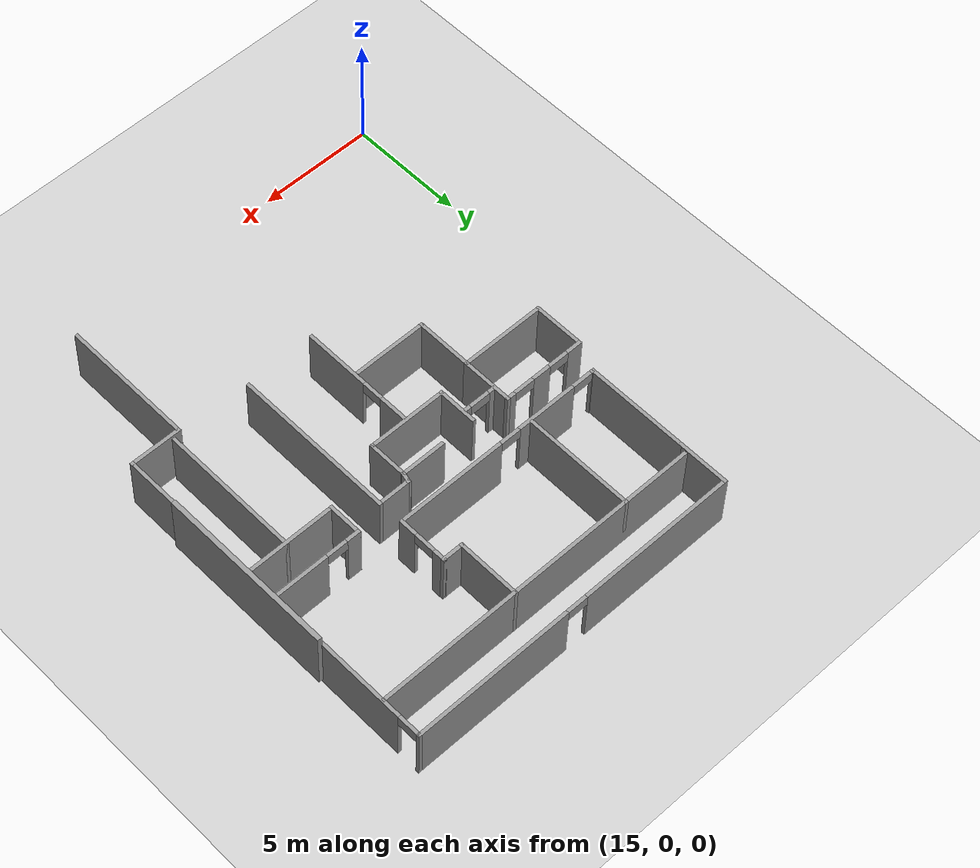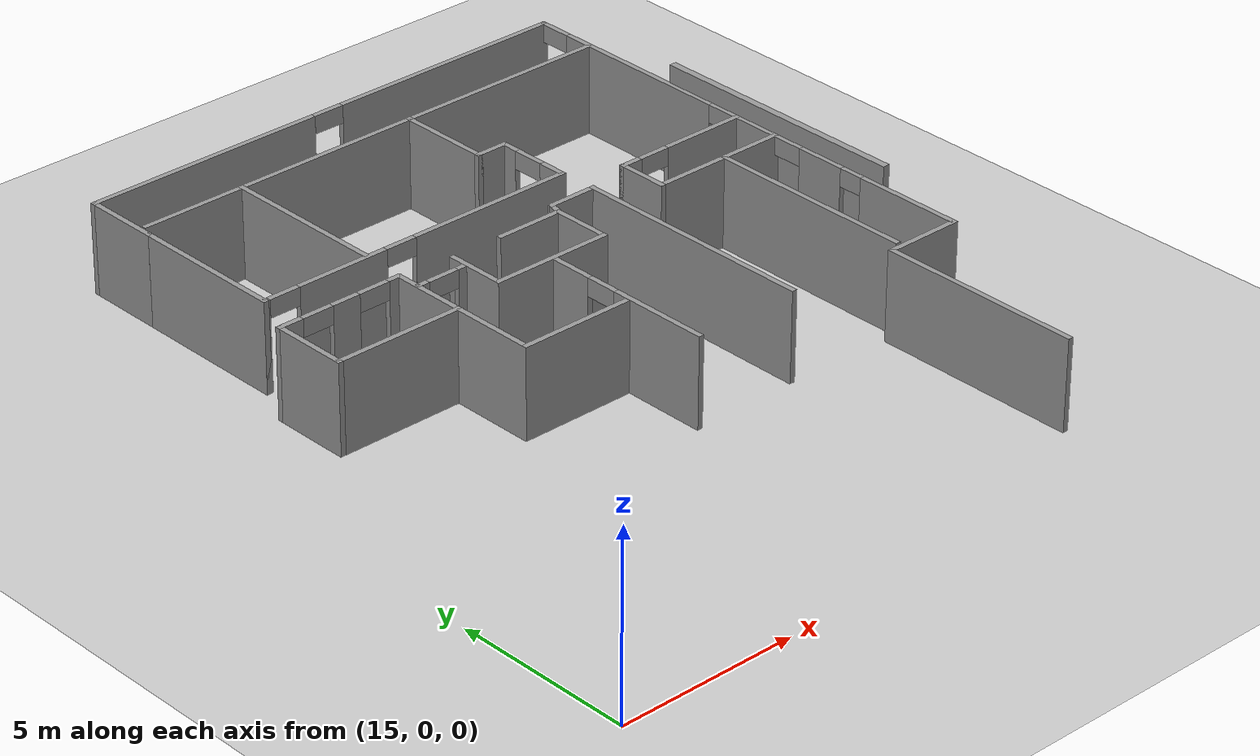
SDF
<sdf version="1.6">
 <world name="default">
  <model name="ground_plane">
   <static>1</static>
   <link name="link">
    <collision name="collision">
     <geometry><plane><normal>0 0 1</normal><size>100 100</size></plane></geometry>
     <surface><friction><ode><mu>100</mu><mu2>50</mu2></ode></friction></surface>
    </collision>
    <visual name="visual">
     <cast_shadows>0</cast_shadows>
     <geometry><plane><normal>0 0 1</normal><size>100 100</size></plane></geometry>
     <material>
      <script><uri>file://media/materials/scripts/gazebo.material</uri><name>Gazebo/Grey</name></script>
     </material>
    </visual>
   </link>
  </model>
  <model name="fin_se1f1.sdf">
   <pose>1.83798 -2.38449 0.2 0 -0 0</pose>
   <link name="Wall_12">
    <collision name="Wall_12_Collision">
     <geometry><box><size>5.75 0.15 2.5</size></box></geometry>
     <pose>0 0 1.25 0 -0 0</pose>
    </collision>
    <visual name="Wall_12_Visual">
     <pose>0 0 1.25 0 -0 0</pose>
     <geometry><box><size>5.75 0.15 2.5</size></box></geometry>
     <material>
      <script><uri>file://media/materials/scripts/gazebo.material</uri><name>Gazebo/Grey</name></script>
      <ambient>1 1 1 1</ambient>
     </material>
     <meta><layer>0</layer></meta>
    </visual>
    <pose>28.6504 6.82457 0 0 -0 1.5708</pose>
   </link>
   <link name="Wall_13">
    <collision name="Wall_13_Collision">
     <geometry><box><size>2.25 0.15 2.5</size></box></geometry>
     <pose>0 0 1.25 0 -0 0</pose>
    </collision>
    <visual name="Wall_13_Visual">
     <pose>0 0 1.25 0 -0 0</pose>
     <geometry><box><size>2.25 0.15 2.5</size></box></geometry>
     <material>
      <script><uri>file://media/materials/scripts/gazebo.material</uri><name>Gazebo/Grey</name></script>
      <ambient>1 1 1 1</ambient>
     </material>
     <meta><layer>0</layer></meta>
    </visual>
    <pose>29.7004 9.62457 0 0 -0 0</pose>
   </link>
   <link name="Wall_16">
    <pose>30.7504 16.9246 0 0 -0 1.5708</pose>
    <visual name="Wall_16_Visual_0">
     <pose>-5.81054 0 1.25 0 -0 0</pose>
     <geometry><box><size>3.12893 0.15 2.5</size></box></geometry>
     <material>
      <script><uri>file://media/materials/scripts/gazebo.material</uri><name>Gazebo/Grey</name></script>
      <ambient>1 1 1 1</ambient>
     </material>
     <meta><layer>0</layer></meta>
    </visual>
    <collision name="Wall_16_Collision_0">
     <geometry><box><size>3.12893 0.15 2.5</size></box></geometry>
     <pose>-5.81054 0 1.25 0 -0 0</pose>
    </collision>
    <visual name="Wall_16_Visual_1">
     <pose>-2.86079 0 1.25 0 -0 0</pose>
     <geometry><box><size>1.41306 0.15 2.5</size></box></geometry>
     <material>
      <script><uri>file://media/materials/scripts/gazebo.material</uri><name>Gazebo/Grey</name></script>
      <ambient>1 1 1 1</ambient>
     </material>
     <meta><layer>0</layer></meta>
    </visual>
    <collision name="Wall_16_Collision_1">
     <geometry><box><size>1.41306 0.15 2.5</size></box></geometry>
     <pose>-2.86079 0 1.25 0 -0 0</pose>
    </collision>
    <visual name="Wall_16_Visual_2">
     <pose>-0.547733 0 1.25 0 -0 0</pose>
     <geometry><box><size>1.41306 0.15 2.5</size></box></geometry>
     <material>
      <script><uri>file://media/materials/scripts/gazebo.material</uri><name>Gazebo/Grey</name></script>
      <ambient>1 1 1 1</ambient>
     </material>
     <meta><layer>0</layer></meta>
    </visual>
    <collision name="Wall_16_Collision_2">
     <geometry><box><size>1.41306 0.15 2.5</size></box></geometry>
     <pose>-0.547733 0 1.25 0 -0 0</pose>
    </collision>
    <visual name="Wall_16_Visual_3">
     <pose>3.70629 0 1.25 0 -0 0</pose>
     <geometry><box><size>5.29498 0.15 2.5</size></box></geometry>
     <material>
      <script><uri>file://media/materials/scripts/gazebo.material</uri><name>Gazebo/Grey</name></script>
      <ambient>1 1 1 1</ambient>
     </material>
     <meta><layer>0</layer></meta>
    </visual>
    <collision name="Wall_16_Collision_3">
     <geometry><box><size>5.29498 0.15 2.5</size></box></geometry>
     <pose>3.70629 0 1.25 0 -0 0</pose>
    </collision>
    <visual name="Wall_16_Visual_4">
     <pose>7.31439 0 1.25 0 -0 0</pose>
     <geometry><box><size>0.121222 0.15 2.5</size></box></geometry>
     <material>
      <script><uri>file://media/materials/scripts/gazebo.material</uri><name>Gazebo/Grey</name></script>
      <ambient>1 1 1 1</ambient>
     </material>
     <meta><layer>0</layer></meta>
    </visual>
    <collision name="Wall_16_Collision_4">
     <geometry><box><size>0.121222 0.15 2.5</size></box></geometry>
     <pose>7.31439 0 1.25 0 -0 0</pose>
    </collision>
    <visual name="Wall_16_Visual_5">
     <pose>-3.9067 0 2.25 0 -0 0</pose>
     <geometry><box><size>0.678751 0.15 0.5</size></box></geometry>
     <material>
      <script><uri>file://media/materials/scripts/gazebo.material</uri><name>Gazebo/Grey</name></script>
      <ambient>1 1 1 1</ambient>
     </material>
     <meta><layer>0</layer></meta>
    </visual>
    <collision name="Wall_16_Collision_5">
     <geometry><box><size>0.678751 0.15 0.5</size></box></geometry>
     <pose>-3.9067 0 2.25 0 -0 0</pose>
    </collision>
    <visual name="Wall_16_Visual_6">
     <pose>-1.70426 0 2.25 0 -0 0</pose>
     <geometry><box><size>0.9 0.15 0.5</size></box></geometry>
     <material>
      <script><uri>file://media/materials/scripts/gazebo.material</uri><name>Gazebo/Grey</name></script>
      <ambient>1 1 1 1</ambient>
     </material>
     <meta><layer>0</layer></meta>
    </visual>
    <collision name="Wall_16_Collision_6">
     <geometry><box><size>0.9 0.15 0.5</size></box></geometry>
     <pose>-1.70426 0 2.25 0 -0 0</pose>
    </collision>
    <visual name="Wall_16_Visual_7">
     <pose>0.608797 0 2.25 0 -0 0</pose>
     <geometry><box><size>0.9 0.15 0.5</size></box></geometry>
     <material>
      <script><uri>file://media/materials/scripts/gazebo.material</uri><name>Gazebo/Grey</name></script>
      <ambient>1 1 1 1</ambient>
     </material>
     <meta><layer>0</layer></meta>
    </visual>
    <collision name="Wall_16_Collision_7">
     <geometry><box><size>0.9 0.15 0.5</size></box></geometry>
     <pose>0.608797 0 2.25 0 -0 0</pose>
    </collision>
    <visual name="Wall_16_Visual_8">
     <pose>6.80378 0 2.25 0 -0 0</pose>
     <geometry><box><size>0.9 0.15 0.5</size></box></geometry>
     <material>
      <script><uri>file://media/materials/scripts/gazebo.material</uri><name>Gazebo/Grey</name></script>
      <ambient>1 1 1 1</ambient>
     </material>
     <meta><layer>0</layer></meta>
    </visual>
    <collision name="Wall_16_Collision_8">
     <geometry><box><size>0.9 0.15 0.5</size></box></geometry>
     <pose>6.80378 0 2.25 0 -0 0</pose>
    </collision>
   </link>
   <link name="Wall_17">
    <pose>23.4504 24.2246 0 0 -0 3.14159</pose>
    <visual name="Wall_17_Visual_0">
     <pose>-3.90372 0 1.25 0 -0 0</pose>
     <geometry><box><size>6.94256 0.15 2.5</size></box></geometry>
     <material>
      <script><uri>file://media/materials/scripts/gazebo.material</uri><name>Gazebo/Grey</name></script>
      <ambient>1 1 1 1</ambient>
     </material>
     <meta><layer>0</layer></meta>
    </visual>
    <collision name="Wall_17_Collision_0">
     <geometry><box><size>6.94256 0.15 2.5</size></box></geometry>
     <pose>-3.90372 0 1.25 0 -0 0</pose>
    </collision>
    <visual name="Wall_17_Visual_1">
     <pose>3.92128 0 1.25 0 -0 0</pose>
     <geometry><box><size>6.90744 0.15 2.5</size></box></geometry>
     <material>
      <script><uri>file://media/materials/scripts/gazebo.material</uri><name>Gazebo/Grey</name></script>
      <ambient>1 1 1 1</ambient>
     </material>
     <meta><layer>0</layer></meta>
    </visual>
    <collision name="Wall_17_Collision_1">
     <geometry><box><size>6.90744 0.15 2.5</size></box></geometry>
     <pose>3.92128 0 1.25 0 -0 0</pose>
    </collision>
    <visual name="Wall_17_Visual_2">
     <pose>0.017557 0 2.25 0 -0 0</pose>
     <geometry><box><size>0.9 0.15 0.5</size></box></geometry>
     <material>
      <script><uri>file://media/materials/scripts/gazebo.material</uri><name>Gazebo/Grey</name></script>
      <ambient>1 1 1 1</ambient>
     </material>
     <meta><layer>0</layer></meta>
    </visual>
    <collision name="Wall_17_Collision_2">
     <geometry><box><size>0.9 0.15 0.5</size></box></geometry>
     <pose>0.017557 0 2.25 0 -0 0</pose>
    </collision>
   </link>
   <link name="Wall_18">
    <collision name="Wall_18_Collision">
     <geometry><box><size>2.25 0.15 2.5</size></box></geometry>
     <pose>0 0 1.25 0 -0 0</pose>
    </collision>
    <visual name="Wall_18_Visual">
     <pose>0 0 1.25 0 -0 0</pose>
     <geometry><box><size>2.25 0.15 2.5</size></box></geometry>
     <material>
      <script><uri>file://media/materials/scripts/gazebo.material</uri><name>Gazebo/Grey</name></script>
      <ambient>1 1 1 1</ambient>
     </material>
     <meta><layer>0</layer></meta>
    </visual>
    <pose>16.1504 23.1746 0 0 0 -1.5708</pose>
   </link>
   <link name="Wall_233">
    <pose>19.9645 15.9042 0 0 -0 0</pose>
    <visual name="Wall_233_Visual_0">
     <pose>-0.585512 0 1.25 0 -0 0</pose>
     <geometry><box><size>0.328976 0.15 2.5</size></box></geometry>
     <material>
      <script><uri>file://media/materials/scripts/gazebo.material</uri><name>Gazebo/Grey</name></script>
      <ambient>1 1 1 1</ambient>
     </material>
     <meta><layer>0</layer></meta>
    </visual>
    <collision name="Wall_233_Collision_0">
     <geometry><box><size>0.328976 0.15 2.5</size></box></geometry>
     <pose>-0.585512 0 1.25 0 -0 0</pose>
    </collision>
    <visual name="Wall_233_Visual_1">
     <pose>0.614488 0 1.25 0 -0 0</pose>
     <geometry><box><size>0.271024 0.15 2.5</size></box></geometry>
     <material>
      <script><uri>file://media/materials/scripts/gazebo.material</uri><name>Gazebo/Grey</name></script>
      <ambient>1 1 1 1</ambient>
     </material>
     <meta><layer>0</layer></meta>
    </visual>
    <collision name="Wall_233_Collision_1">
     <geometry><box><size>0.271024 0.15 2.5</size></box></geometry>
     <pose>0.614488 0 1.25 0 -0 0</pose>
    </collision>
    <visual name="Wall_233_Visual_2">
     <pose>0.028976 0 2.25 0 -0 0</pose>
     <geometry><box><size>0.9 0.15 0.5</size></box></geometry>
     <material>
      <script><uri>file://media/materials/scripts/gazebo.material</uri><name>Gazebo/Grey</name></script>
      <ambient>1 1 1 1</ambient>
     </material>
     <meta><layer>0</layer></meta>
    </visual>
    <collision name="Wall_233_Collision_2">
     <geometry><box><size>0.9 0.15 0.5</size></box></geometry>
     <pose>0.028976 0 2.25 0 -0 0</pose>
    </collision>
   </link>
   <link name="Wall_32">
    <collision name="Wall_32_Collision">
     <geometry><box><size>4 0.15 2.5</size></box></geometry>
     <pose>0 0 1.25 0 -0 0</pose>
    </collision>
    <visual name="Wall_32_Visual">
     <pose>0 0 1.25 0 -0 0</pose>
     <geometry><box><size>4 0.15 2.5</size></box></geometry>
     <material>
      <script><uri>file://media/materials/scripts/gazebo.material</uri><name>Gazebo/Grey</name></script>
      <ambient>1 1 1 1</ambient>
     </material>
     <meta><layer>0</layer></meta>
    </visual>
    <pose>28.8116 15.7048 0 0 -0 3.14159</pose>
   </link>
   <link name="Wall_33">
    <collision name="Wall_33_Collision">
     <geometry><box><size>1.5 0.15 2.5</size></box></geometry>
     <pose>0 0 1.25 0 -0 0</pose>
    </collision>
    <visual name="Wall_33_Visual">
     <pose>0 0 1.25 0 -0 0</pose>
     <geometry><box><size>1.5 0.15 2.5</size></box></geometry>
     <material>
      <script><uri>file://media/materials/scripts/gazebo.material</uri><name>Gazebo/Grey</name></script>
      <ambient>1 1 1 1</ambient>
     </material>
     <meta><layer>0</layer></meta>
    </visual>
    <pose>26.8866 16.3798 0 0 -0 1.5708</pose>
   </link>
   <link name="Wall_34">
    <pose>28.8116 17.0548 0 0 -0 0</pose>
    <visual name="Wall_34_Visual_0">
     <pose>-1.6918 0 1.25 0 -0 0</pose>
     <geometry><box><size>0.616404 0.15 2.5</size></box></geometry>
     <material>
      <script><uri>file://media/materials/scripts/gazebo.material</uri><name>Gazebo/Grey</name></script>
      <ambient>1 1 1 1</ambient>
     </material>
     <meta><layer>0</layer></meta>
    </visual>
    <collision name="Wall_34_Collision_0">
     <geometry><box><size>0.616404 0.15 2.5</size></box></geometry>
     <pose>-1.6918 0 1.25 0 -0 0</pose>
    </collision>
    <visual name="Wall_34_Visual_1">
     <pose>0.758202 0 1.25 0 -0 0</pose>
     <geometry><box><size>2.4836 0.15 2.5</size></box></geometry>
     <material>
      <script><uri>file://media/materials/scripts/gazebo.material</uri><name>Gazebo/Grey</name></script>
      <ambient>1 1 1 1</ambient>
     </material>
     <meta><layer>0</layer></meta>
    </visual>
    <collision name="Wall_34_Collision_1">
     <geometry><box><size>2.4836 0.15 2.5</size></box></geometry>
     <pose>0.758202 0 1.25 0 -0 0</pose>
    </collision>
    <visual name="Wall_34_Visual_2">
     <pose>-0.933596 0 2.25 0 -0 0</pose>
     <geometry><box><size>0.9 0.15 0.5</size></box></geometry>
     <material>
      <script><uri>file://media/materials/scripts/gazebo.material</uri><name>Gazebo/Grey</name></script>
      <ambient>1 1 1 1</ambient>
     </material>
     <meta><layer>0</layer></meta>
    </visual>
    <collision name="Wall_34_Collision_2">
     <geometry><box><size>0.9 0.15 0.5</size></box></geometry>
     <pose>-0.933596 0 2.25 0 -0 0</pose>
    </collision>
   </link>
   <link name="Wall_36">
    <collision name="Wall_36_Collision">
     <geometry><box><size>6 0.15 2.5</size></box></geometry>
     <pose>0 0 1.25 0 -0 0</pose>
    </collision>
    <visual name="Wall_36_Visual">
     <pose>0 0 1.25 0 -0 0</pose>
     <geometry><box><size>6 0.15 2.5</size></box></geometry>
     <material>
      <script><uri>file://media/materials/scripts/gazebo.material</uri><name>Gazebo/Grey</name></script>
      <ambient>1 1 1 1</ambient>
     </material>
     <meta><layer>0</layer></meta>
    </visual>
    <pose>29.0138 12.7798 0 0 0 -1.5708</pose>
   </link>
   <link name="Wall_38">
    <pose>17.4309 16.5662 0 0 -0 3.14159</pose>
    <visual name="Wall_38_Visual_0">
     <pose>-1.65937 0 1.25 0 -0 0</pose>
     <geometry><box><size>0.431262 0.15 2.5</size></box></geometry>
     <material>
      <script><uri>file://media/materials/scripts/gazebo.material</uri><name>Gazebo/Grey</name></script>
      <ambient>1 1 1 1</ambient>
     </material>
     <meta><layer>0</layer></meta>
    </visual>
    <collision name="Wall_38_Collision_0">
     <geometry><box><size>0.431262 0.15 2.5</size></box></geometry>
     <pose>-1.65937 0 1.25 0 -0 0</pose>
    </collision>
    <visual name="Wall_38_Visual_1">
     <pose>-0.138911 0 1.25 0 -0 0</pose>
     <geometry><box><size>0.809654 0.15 2.5</size></box></geometry>
     <material>
      <script><uri>file://media/materials/scripts/gazebo.material</uri><name>Gazebo/Grey</name></script>
      <ambient>1 1 1 1</ambient>
     </material>
     <meta><layer>0</layer></meta>
    </visual>
    <collision name="Wall_38_Collision_1">
     <geometry><box><size>0.809654 0.15 2.5</size></box></geometry>
     <pose>-0.138911 0 1.25 0 -0 0</pose>
    </collision>
    <visual name="Wall_38_Visual_2">
     <pose>1.52046 0 1.25 0 -0 0</pose>
     <geometry><box><size>0.709084 0.15 2.5</size></box></geometry>
     <material>
      <script><uri>file://media/materials/scripts/gazebo.material</uri><name>Gazebo/Grey</name></script>
      <ambient>1 1 1 1</ambient>
     </material>
     <meta><layer>0</layer></meta>
    </visual>
    <collision name="Wall_38_Collision_2">
     <geometry><box><size>0.709084 0.15 2.5</size></box></geometry>
     <pose>1.52046 0 1.25 0 -0 0</pose>
    </collision>
    <visual name="Wall_38_Visual_3">
     <pose>-0.993738 0 2.25 0 -0 0</pose>
     <geometry><box><size>0.9 0.15 0.5</size></box></geometry>
     <material>
      <script><uri>file://media/materials/scripts/gazebo.material</uri><name>Gazebo/Grey</name></script>
      <ambient>1 1 1 1</ambient>
     </material>
     <meta><layer>0</layer></meta>
    </visual>
    <collision name="Wall_38_Collision_3">
     <geometry><box><size>0.9 0.15 0.5</size></box></geometry>
     <pose>-0.993738 0 2.25 0 -0 0</pose>
    </collision>
    <visual name="Wall_38_Visual_4">
     <pose>0.715916 0 2.25 0 -0 0</pose>
     <geometry><box><size>0.9 0.15 0.5</size></box></geometry>
     <material>
      <script><uri>file://media/materials/scripts/gazebo.material</uri><name>Gazebo/Grey</name></script>
      <ambient>1 1 1 1</ambient>
     </material>
     <meta><layer>0</layer></meta>
    </visual>
    <collision name="Wall_38_Collision_4">
     <geometry><box><size>0.9 0.15 0.5</size></box></geometry>
     <pose>0.715916 0 2.25 0 -0 0</pose>
    </collision>
   </link>
   <link name="Wall_39">
    <collision name="Wall_39_Collision">
     <geometry><box><size>2.25 0.15 2.5</size></box></geometry>
     <pose>0 0 1.25 0 -0 0</pose>
    </collision>
    <visual name="Wall_39_Visual">
     <pose>0 0 1.25 0 -0 0</pose>
     <geometry><box><size>2.25 0.15 2.5</size></box></geometry>
     <material>
      <script><uri>file://media/materials/scripts/gazebo.material</uri><name>Gazebo/Grey</name></script>
      <ambient>1 1 1 1</ambient>
     </material>
     <meta><layer>0</layer></meta>
    </visual>
    <pose>15.6309 15.5162 0 0 0 -1.5708</pose>
   </link>
   <link name="Wall_40">
    <collision name="Wall_40_Collision">
     <geometry><box><size>3.75 0.15 2.5</size></box></geometry>
     <pose>0 0 1.25 0 -0 0</pose>
    </collision>
    <visual name="Wall_40_Visual">
     <pose>0 0 1.25 0 -0 0</pose>
     <geometry><box><size>3.75 0.15 2.5</size></box></geometry>
     <material>
      <script><uri>file://media/materials/scripts/gazebo.material</uri><name>Gazebo/Grey</name></script>
      <ambient>1 1 1 1</ambient>
     </material>
     <meta><layer>0</layer></meta>
    </visual>
    <pose>17.4309 14.4662 0 0 -0 0</pose>
   </link>
   <link name="Wall_41">
    <collision name="Wall_41_Collision">
     <geometry><box><size>2.25 0.15 2.5</size></box></geometry>
     <pose>0 0 1.25 0 -0 0</pose>
    </collision>
    <visual name="Wall_41_Visual">
     <pose>0 0 1.25 0 -0 0</pose>
     <geometry><box><size>2.25 0.15 2.5</size></box></geometry>
     <material>
      <script><uri>file://media/materials/scripts/gazebo.material</uri><name>Gazebo/Grey</name></script>
      <ambient>1 1 1 1</ambient>
     </material>
     <meta><layer>0</layer></meta>
    </visual>
    <pose>19.2309 15.5162 0 0 -0 1.5708</pose>
   </link>
   <link name="Wall_43">
    <collision name="Wall_43_Collision">
     <geometry><box><size>1.75 0.15 2.5</size></box></geometry>
     <pose>0 0 1.25 0 -0 0</pose>
    </collision>
    <visual name="Wall_43_Visual">
     <pose>0 0 1.25 0 -0 0</pose>
     <geometry><box><size>1.75 0.15 2.5</size></box></geometry>
     <material>
      <script><uri>file://media/materials/scripts/gazebo.material</uri><name>Gazebo/Grey</name></script>
      <ambient>1 1 1 1</ambient>
     </material>
     <meta><layer>0</layer></meta>
    </visual>
    <pose>20.7691 15.5816 0 0 0 -1.5708</pose>
   </link>
   <link name="Wall_44">
    <collision name="Wall_44_Collision">
     <geometry><box><size>3.5 0.15 2.5</size></box></geometry>
     <pose>0 0 1.25 0 -0 0</pose>
    </collision>
    <visual name="Wall_44_Visual">
     <pose>0 0 1.25 0 -0 0</pose>
     <geometry><box><size>3.5 0.15 2.5</size></box></geometry>
     <material>
      <script><uri>file://media/materials/scripts/gazebo.material</uri><name>Gazebo/Grey</name></script>
      <ambient>1 1 1 1</ambient>
     </material>
     <meta><layer>0</layer></meta>
    </visual>
    <pose>22.4441 14.7816 0 0 -0 0</pose>
   </link>
   <link name="Wall_45">
    <collision name="Wall_45_Collision">
     <geometry><box><size>1.75 0.15 2.5</size></box></geometry>
     <pose>0 0 1.25 0 -0 0</pose>
    </collision>
    <visual name="Wall_45_Visual">
     <pose>0 0 1.25 0 -0 0</pose>
     <geometry><box><size>1.75 0.15 2.5</size></box></geometry>
     <material>
      <script><uri>file://media/materials/scripts/gazebo.material</uri><name>Gazebo/Grey</name></script>
      <ambient>1 1 1 1</ambient>
     </material>
     <meta><layer>0</layer></meta>
    </visual>
    <pose>24.1191 15.5816 0 0 -0 1.5708</pose>
   </link>
   <link name="Wall_46">
    <collision name="Wall_46_Collision">
     <geometry><box><size>2 0.15 2.5</size></box></geometry>
     <pose>0 0 1.25 0 -0 0</pose>
    </collision>
    <visual name="Wall_46_Visual">
     <pose>0 0 1.25 0 -0 0</pose>
     <geometry><box><size>2 0.15 2.5</size></box></geometry>
     <material>
      <script><uri>file://media/materials/scripts/gazebo.material</uri><name>Gazebo/Grey</name></script>
      <ambient>1 1 1 1</ambient>
     </material>
     <meta><layer>0</layer></meta>
    </visual>
    <pose>23.1941 16.3816 0 0 -0 3.14159</pose>
   </link>
   <link name="Wall_48">
    <collision name="Wall_48_Collision">
     <geometry><box><size>0.5 0.15 2.5</size></box></geometry>
     <pose>0 0 1.25 0 -0 0</pose>
    </collision>
    <visual name="Wall_48_Visual">
     <pose>0 0 1.25 0 -0 0</pose>
     <geometry><box><size>0.5 0.15 2.5</size></box></geometry>
     <material>
      <script><uri>file://media/materials/scripts/gazebo.material</uri><name>Gazebo/Grey</name></script>
      <ambient>1 1 1 1</ambient>
     </material>
     <meta><layer>0</layer></meta>
    </visual>
    <pose>24.1643 16.5507 0 0 -0 1.309</pose>
   </link>
   <link name="Wall_49">
    <collision name="Wall_49_Collision">
     <geometry><box><size>1.5 0.15 2.5</size></box></geometry>
     <pose>0 0 1.25 0 -0 0</pose>
    </collision>
    <visual name="Wall_49_Visual">
     <pose>0 0 1.25 0 -0 0</pose>
     <geometry><box><size>1.5 0.15 2.5</size></box></geometry>
     <material>
      <script><uri>file://media/materials/scripts/gazebo.material</uri><name>Gazebo/Grey</name></script>
      <ambient>1 1 1 1</ambient>
     </material>
     <meta><layer>0</layer></meta>
    </visual>
    <pose>24.8846 16.7197 0 0 -0 0</pose>
   </link>
   <link name="Wall_50">
    <collision name="Wall_50_Collision">
     <geometry><box><size>7 0.15 2.5</size></box></geometry>
     <pose>0 0 1.25 0 -0 0</pose>
    </collision>
    <visual name="Wall_50_Visual">
     <pose>0 0 1.25 0 -0 0</pose>
     <geometry><box><size>7 0.15 2.5</size></box></geometry>
     <material>
      <script><uri>file://media/materials/scripts/gazebo.material</uri><name>Gazebo/Grey</name></script>
      <ambient>1 1 1 1</ambient>
     </material>
     <meta><layer>0</layer></meta>
    </visual>
    <pose>25.5596 13.2947 0 0 0 -1.5708</pose>
   </link>
   <link name="Wall_52">
    <collision name="Wall_52_Collision">
     <geometry><box><size>2.5 0.15 2.5</size></box></geometry>
     <pose>0 0 1.25 0 -0 0</pose>
    </collision>
    <visual name="Wall_52_Visual">
     <pose>0 0 1.25 0 -0 0</pose>
     <geometry><box><size>2.5 0.15 2.5</size></box></geometry>
     <material>
      <script><uri>file://media/materials/scripts/gazebo.material</uri><name>Gazebo/Grey</name></script>
      <ambient>1 1 1 1</ambient>
     </material>
     <meta><layer>0</layer></meta>
    </visual>
    <pose>19.2309 13.2912 0 0 0 -1.5708</pose>
   </link>
   <link name="Wall_53">
    <collision name="Wall_53_Collision">
     <geometry><box><size>3.25 0.15 2.5</size></box></geometry>
     <pose>0 0 1.25 0 -0 0</pose>
    </collision>
    <visual name="Wall_53_Visual">
     <pose>0 0 1.25 0 -0 0</pose>
     <geometry><box><size>3.25 0.15 2.5</size></box></geometry>
     <material>
      <script><uri>file://media/materials/scripts/gazebo.material</uri><name>Gazebo/Grey</name></script>
      <ambient>1 1 1 1</ambient>
     </material>
     <meta><layer>0</layer></meta>
    </visual>
    <pose>20.7809 12.1162 0 0 -0 0</pose>
   </link>
   <link name="Wall_55">
    <pose>22.4918 12.2338 0 0 0 -1.5708</pose>
    <visual name="Wall_55_Visual_0">
     <pose>-1.8821 0 1.25 0 -0 0</pose>
     <geometry><box><size>1.2358 0.15 2.5</size></box></geometry>
     <material>
      <script><uri>file://media/materials/scripts/gazebo.material</uri><name>Gazebo/Grey</name></script>
      <ambient>1 1 1 1</ambient>
     </material>
     <meta><layer>0</layer></meta>
    </visual>
    <collision name="Wall_55_Collision_0">
     <geometry><box><size>1.2358 0.15 2.5</size></box></geometry>
     <pose>-1.8821 0 1.25 0 -0 0</pose>
    </collision>
    <visual name="Wall_55_Visual_1">
     <pose>1.0679 0 1.25 0 -0 0</pose>
     <geometry><box><size>2.8642 0.15 2.5</size></box></geometry>
     <material>
      <script><uri>file://media/materials/scripts/gazebo.material</uri><name>Gazebo/Grey</name></script>
      <ambient>1 1 1 1</ambient>
     </material>
     <meta><layer>0</layer></meta>
    </visual>
    <collision name="Wall_55_Collision_1">
     <geometry><box><size>2.8642 0.15 2.5</size></box></geometry>
     <pose>1.0679 0 1.25 0 -0 0</pose>
    </collision>
    <visual name="Wall_55_Visual_2">
     <pose>-0.814197 0 2.25 0 -0 0</pose>
     <geometry><box><size>0.9 0.15 0.5</size></box></geometry>
     <material>
      <script><uri>file://media/materials/scripts/gazebo.material</uri><name>Gazebo/Grey</name></script>
      <ambient>1 1 1 1</ambient>
     </material>
     <meta><layer>0</layer></meta>
    </visual>
    <collision name="Wall_55_Collision_2">
     <geometry><box><size>0.9 0.15 0.5</size></box></geometry>
     <pose>-0.814197 0 2.25 0 -0 0</pose>
    </collision>
   </link>
   <link name="Wall_57">
    <collision name="Wall_57_Collision">
     <geometry><box><size>4.5 0.15 2.5</size></box></geometry>
     <pose>0 0 1.25 0 -0 0</pose>
    </collision>
    <visual name="Wall_57_Visual">
     <pose>0 0 1.25 0 -0 0</pose>
     <geometry><box><size>4.5 0.15 2.5</size></box></geometry>
     <material>
      <script><uri>file://media/materials/scripts/gazebo.material</uri><name>Gazebo/Grey</name></script>
      <ambient>1 1 1 1</ambient>
     </material>
     <meta><layer>0</layer></meta>
    </visual>
    <pose>16.1504 19.9496 0 0 0 -1.5708</pose>
   </link>
   <link name="Wall_58">
    <pose>20.8254 17.7746 0 0 -0 0</pose>
    <visual name="Wall_58_Visual_0">
     <pose>-4.65524 0 1.25 0 -0 0</pose>
     <geometry><box><size>0.189509 0.15 2.5</size></box></geometry>
     <material>
      <script><uri>file://media/materials/scripts/gazebo.material</uri><name>Gazebo/Grey</name></script>
      <ambient>1 1 1 1</ambient>
     </material>
     <meta><layer>0</layer></meta>
    </visual>
    <collision name="Wall_58_Collision_0">
     <geometry><box><size>0.189509 0.15 2.5</size></box></geometry>
     <pose>-4.65524 0 1.25 0 -0 0</pose>
    </collision>
    <visual name="Wall_58_Visual_1">
     <pose>-2.32038 0 1.25 0 -0 0</pose>
     <geometry><box><size>2.68022 0.15 2.5</size></box></geometry>
     <material>
      <script><uri>file://media/materials/scripts/gazebo.material</uri><name>Gazebo/Grey</name></script>
      <ambient>1 1 1 1</ambient>
     </material>
     <meta><layer>0</layer></meta>
    </visual>
    <collision name="Wall_58_Collision_1">
     <geometry><box><size>2.68022 0.15 2.5</size></box></geometry>
     <pose>-2.32038 0 1.25 0 -0 0</pose>
    </collision>
    <visual name="Wall_58_Visual_2">
     <pose>2.33486 0 1.25 0 -0 0</pose>
     <geometry><box><size>4.83028 0.15 2.5</size></box></geometry>
     <material>
      <script><uri>file://media/materials/scripts/gazebo.material</uri><name>Gazebo/Grey</name></script>
      <ambient>1 1 1 1</ambient>
     </material>
     <meta><layer>0</layer></meta>
    </visual>
    <collision name="Wall_58_Collision_2">
     <geometry><box><size>4.83028 0.15 2.5</size></box></geometry>
     <pose>2.33486 0 1.25 0 -0 0</pose>
    </collision>
    <visual name="Wall_58_Visual_3">
     <pose>-4.11049 0 2.25 0 -0 0</pose>
     <geometry><box><size>0.9 0.15 0.5</size></box></geometry>
     <material>
      <script><uri>file://media/materials/scripts/gazebo.material</uri><name>Gazebo/Grey</name></script>
      <ambient>1 1 1 1</ambient>
     </material>
     <meta><layer>0</layer></meta>
    </visual>
    <collision name="Wall_58_Collision_3">
     <geometry><box><size>0.9 0.15 0.5</size></box></geometry>
     <pose>-4.11049 0 2.25 0 -0 0</pose>
    </collision>
    <visual name="Wall_58_Visual_4">
     <pose>-0.530275 0 2.25 0 -0 0</pose>
     <geometry><box><size>0.9 0.15 0.5</size></box></geometry>
     <material>
      <script><uri>file://media/materials/scripts/gazebo.material</uri><name>Gazebo/Grey</name></script>
      <ambient>1 1 1 1</ambient>
     </material>
     <meta><layer>0</layer></meta>
    </visual>
    <collision name="Wall_58_Collision_4">
     <geometry><box><size>0.9 0.15 0.5</size></box></geometry>
     <pose>-0.530275 0 2.25 0 -0 0</pose>
    </collision>
   </link>
   <link name="Wall_59">
    <pose>25.5004 18.8246 0 0 -0 1.5708</pose>
    <visual name="Wall_59_Visual_0">
     <pose>-0.729127 0 1.25 0 -0 0</pose>
     <geometry><box><size>0.791747 0.15 2.5</size></box></geometry>
     <material>
      <script><uri>file://media/materials/scripts/gazebo.material</uri><name>Gazebo/Grey</name></script>
      <ambient>1 1 1 1</ambient>
     </material>
     <meta><layer>0</layer></meta>
    </visual>
    <collision name="Wall_59_Collision_0">
     <geometry><box><size>0.791747 0.15 2.5</size></box></geometry>
     <pose>-0.729127 0 1.25 0 -0 0</pose>
    </collision>
    <visual name="Wall_59_Visual_1">
     <pose>0.845873 0 1.25 0 -0 0</pose>
     <geometry><box><size>0.558253 0.15 2.5</size></box></geometry>
     <material>
      <script><uri>file://media/materials/scripts/gazebo.material</uri><name>Gazebo/Grey</name></script>
      <ambient>1 1 1 1</ambient>
     </material>
     <meta><layer>0</layer></meta>
    </visual>
    <collision name="Wall_59_Collision_1">
     <geometry><box><size>0.558253 0.15 2.5</size></box></geometry>
     <pose>0.845873 0 1.25 0 -0 0</pose>
    </collision>
    <visual name="Wall_59_Visual_2">
     <pose>0.116747 0 2.25 0 -0 0</pose>
     <geometry><box><size>0.9 0.15 0.5</size></box></geometry>
     <material>
      <script><uri>file://media/materials/scripts/gazebo.material</uri><name>Gazebo/Grey</name></script>
      <ambient>1 1 1 1</ambient>
     </material>
     <meta><layer>0</layer></meta>
    </visual>
    <collision name="Wall_59_Collision_2">
     <geometry><box><size>0.9 0.15 0.5</size></box></geometry>
     <pose>0.116747 0 2.25 0 -0 0</pose>
    </collision>
   </link>
   <link name="Wall_60">
    <collision name="Wall_60_Collision">
     <geometry><box><size>1 0.15 2.5</size></box></geometry>
     <pose>0 0 1.25 0 -0 0</pose>
    </collision>
    <visual name="Wall_60_Visual">
     <pose>0 0 1.25 0 -0 0</pose>
     <geometry><box><size>1 0.15 2.5</size></box></geometry>
     <material>
      <script><uri>file://media/materials/scripts/gazebo.material</uri><name>Gazebo/Grey</name></script>
      <ambient>1 1 1 1</ambient>
     </material>
     <meta><layer>0</layer></meta>
    </visual>
    <pose>25.0754 19.8746 0 0 -0 3.14159</pose>
   </link>
   <link name="Wall_61">
    <collision name="Wall_61_Collision">
     <geometry><box><size>2.75 0.15 2.5</size></box></geometry>
     <pose>0 0 1.25 0 -0 0</pose>
    </collision>
    <visual name="Wall_61_Visual">
     <pose>0 0 1.25 0 -0 0</pose>
     <geometry><box><size>2.75 0.15 2.5</size></box></geometry>
     <material>
      <script><uri>file://media/materials/scripts/gazebo.material</uri><name>Gazebo/Grey</name></script>
      <ambient>1 1 1 1</ambient>
     </material>
     <meta><layer>0</layer></meta>
    </visual>
    <pose>24.6504 21.1746 0 0 -0 1.5708</pose>
   </link>
   <link name="Wall_63">
    <collision name="Wall_63_Collision">
     <geometry><box><size>14.5 0.15 2.5</size></box></geometry>
     <pose>0 0 1.25 0 -0 0</pose>
    </collision>
    <visual name="Wall_63_Visual">
     <pose>0 0 1.25 0 -0 0</pose>
     <geometry><box><size>14.5 0.15 2.5</size></box></geometry>
     <material>
      <script><uri>file://media/materials/scripts/gazebo.material</uri><name>Gazebo/Grey</name></script>
      <ambient>1 1 1 1</ambient>
     </material>
     <meta><layer>0</layer></meta>
    </visual>
    <pose>23.514 22.4729 0 0 -0 0</pose>
   </link>
   <link name="Wall_65">
    <collision name="Wall_65_Collision">
     <geometry><box><size>4.75 0.15 2.5</size></box></geometry>
     <pose>0 0 1.25 0 -0 0</pose>
    </collision>
    <visual name="Wall_65_Visual">
     <pose>0 0 1.25 0 -0 0</pose>
     <geometry><box><size>4.75 0.15 2.5</size></box></geometry>
     <material>
      <script><uri>file://media/materials/scripts/gazebo.material</uri><name>Gazebo/Grey</name></script>
      <ambient>1 1 1 1</ambient>
     </material>
     <meta><layer>0</layer></meta>
    </visual>
    <pose>19.2924 20.1729 0 0 0 -1.5708</pose>
   </link>
   <static>1</static>
  </model>
  <model name="grey_wall_2">
   <static>1</static>
   <link name="link">
    <pose>0 0 1.4 0 -0 0</pose>
    <collision name="collision"><geometry><box><size>7.5 0.2 2.8</size></box></geometry></collision>
    <visual name="visual">
     <cast_shadows>0</cast_shadows>
     <geometry><box><size>7.5 0.2 2.8</size></box></geometry>
     <material>
      <script>
       <uri>model://grey_wall/materials/scripts</uri>
       <uri>model://grey_wall/materials/textures</uri>
       <name>vrc/grey_wall</name>
      </script>
     </material>
    </visual>
   </link>
   <pose>32.7486 13.4111 0.4 0 -0 1.57299</pose>
  </model>
 </world>
</sdf>
